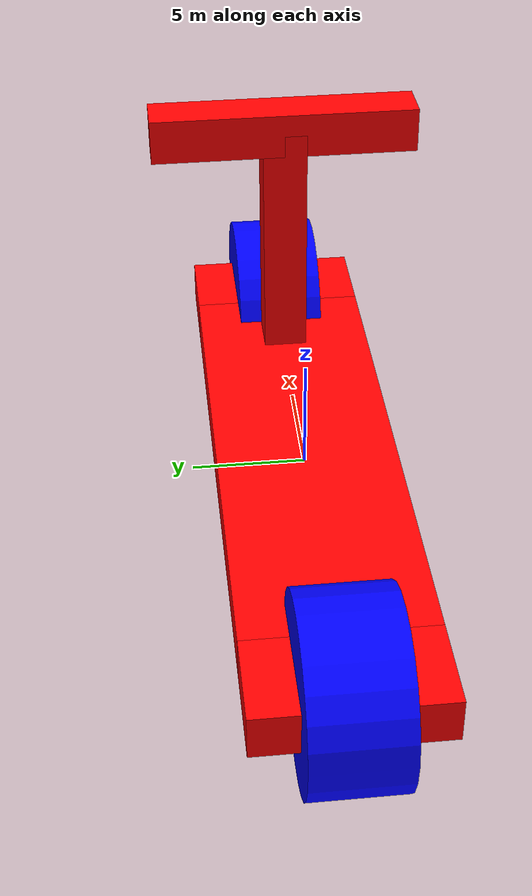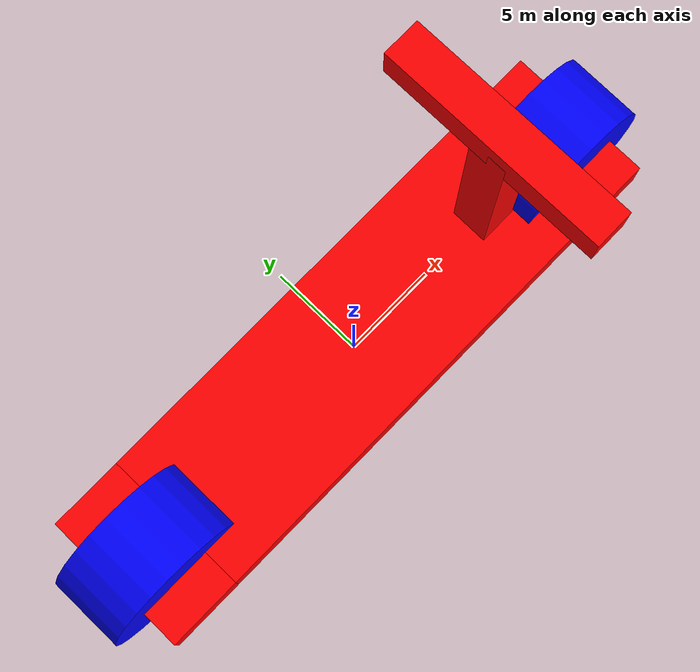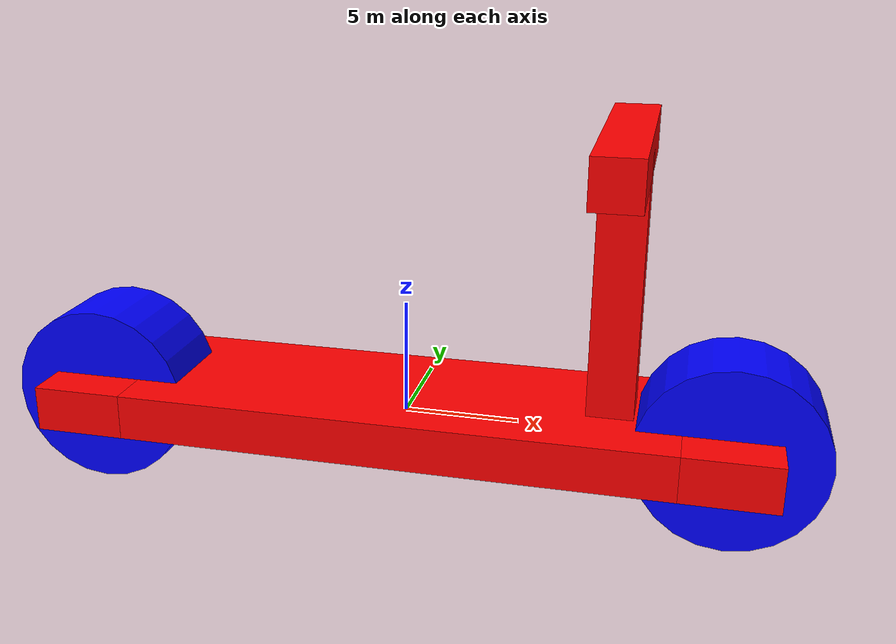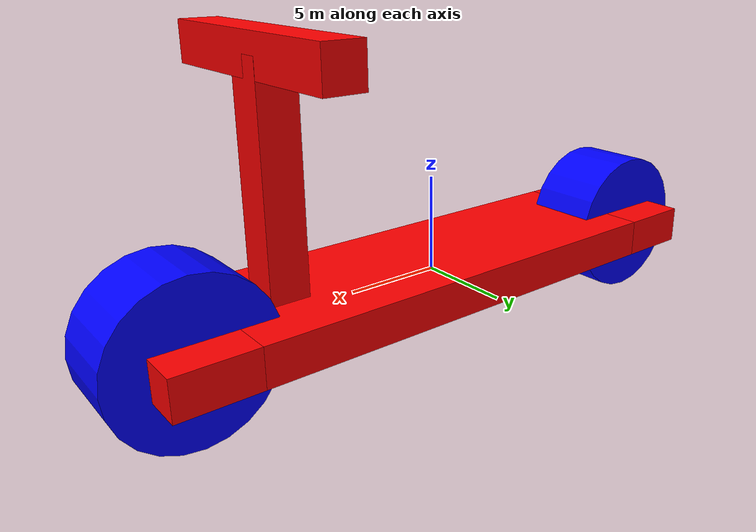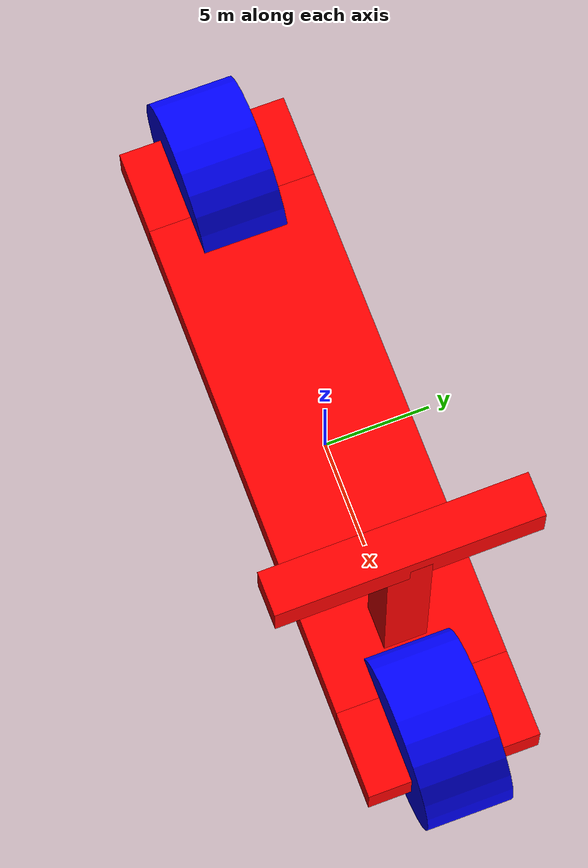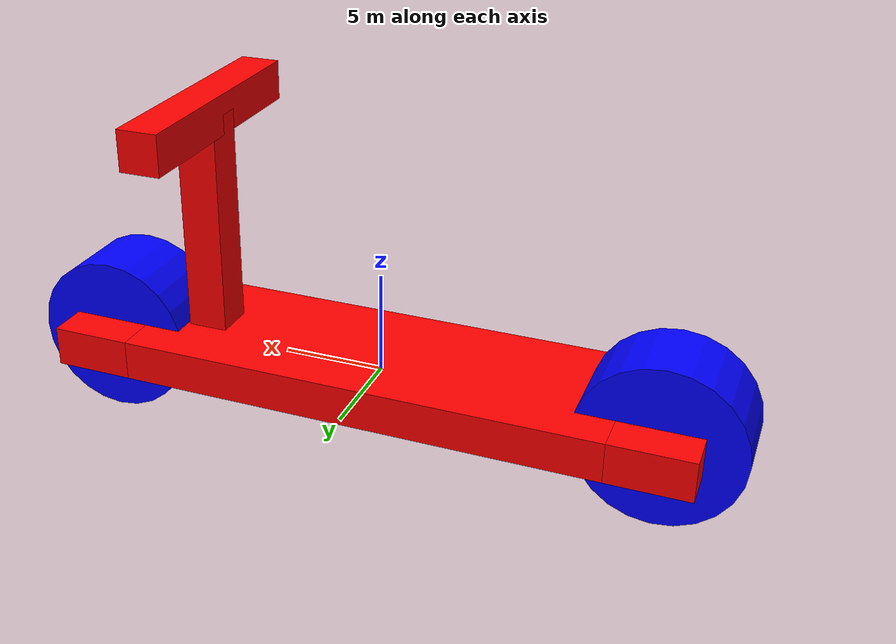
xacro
<?xml version="1.0"?>
<robot xmlns:xacro="http://www.ros.org/wiki/xacro" name="NAME_UNIT" >
	<xacro:arg name="colors" default="false"/>
	<xacro:arg name="initial" default="false"/>
	<xacro:arg name="color_initial" default="false"/>
	<xacro:property name="rectangle_color">
		<color rgba = "1 0 0 1.0" />
	 </xacro:property>
	 <xacro:property name="cylinder_color">
		 <color rgba = "0 0 1 1.0" />
	 </xacro:property>
	<xacro:property name="k" value="1"/>
	<xacro:if value="$(arg colors)">
		<xacro:property name="rectangle_color">
			<color rgba = "1 1 0 1.0" />
		</xacro:property>
		<xacro:property name="cylinder_color">
			<color rgba = "0 1 1 1.0" />
		</xacro:property>
	</xacro:if>
	<xacro:if value="$(arg color_initial)">
		<xacro:property name="rectangle_color">
			<color rgba = "0.3 0.2 0.5 1.0" />
		</xacro:property>
		<xacro:property name="cylinder_color">
			<color rgba = "0.5 0.1 0.9 1.0" />
		</xacro:property>
		<xacro:property name="k" value="2" />
	</xacro:if>
	<xacro:if value="$(arg initial)">
		<xacro:property name="k" value="3" />
	</xacro:if>
	<xacro:include filename="robot.xacro"/>
</robot>

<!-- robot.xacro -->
<robot xmlns:xacro="http://www.ros.org/wiki/xacro" name="NAME_UNIT" >
	<xacro:property name="l" value="24" />
	<xacro:property name="w" value="8" />
	<xacro:property name="h" value="2" />
	<xacro:property name="m" value="10"/>

	<xacro:include filename= "rectangle.xacro"/>
	<xacro:include filename="cylinder.xacro"/>
	<xacro:include filename="joints.xacro"/>

	<link name="root"/>

	<xacro:rectangle link_name="main_block" l="${l}" w="${w}" h="${h}" m="${m}" />

	<xacro:rectangle link_name="small_block1" l="${l/6}" w="${w/4}" h="${h}" m="${m/10}" />
	<xacro:rectangle link_name="small_block2" l="${l/6}" w="${w/4}" h="${h}" m="${m/10}" />
	<xacro:rectangle link_name="small_block3" l="${l/6}" w="${w/4}" h="${h}" m="${m/10}" />
	<xacro:rectangle link_name="small_block4" l="${l/6}" w="${w/4}" h="${h}" m="${m/10}" />

	<xacro:rectangle link_name="vertical_axis" l="${l/12}" w="${w/4}" h="${h*6}" m="${m/3}" />
	<xacro:rectangle link_name="horizontal_axis" l="${l/2}" w="${w/4}" h="${h}" m="${m/6}"/>

	<xacro:cylinder link_name="cylinder1" r="${h*2/k}" l="${w/2}" m="${m/8}"/>
	<xacro:cylinder link_name="cylinder2" r="${h*2/k}" l="${w/2}" m="${m/8}"/>

	<xacro:rec2rec_joint parent_name="root" child_name="main_block" type="fixed" rotation="0 0 0 " angle="0 0 0"  translateX="0" translateY="0" translateZ="0" dirX="0" dirY="0" dirZ="0" n="0"/>
	<xacro:rec2rec_joint parent_name="main_block" child_name="small_block1" type="fixed" rotation="0 0 0" angle="0 0 0" translateX="${l/2+l/12}" translateY="${3*w/8}" translateZ="0" dirX="1" dirY="1" dirZ="0" n="1"/>
	<xacro:rec2rec_joint parent_name="main_block" child_name="small_block2" type="fixed" rotation="0 0 0" angle="0 0 0"  translateX="${l/2+l/12}" translateY="${3*w/8}" translateZ="0" dirX="1" dirY="-1" dirZ="0" n="2"/>
	<xacro:rec2rec_joint parent_name="main_block" child_name="small_block3" type="fixed" rotation="0 0 0" angle="0 0 0" translateX="${l/2+l/12}" translateY="${3*w/8}" translateZ="0" dirX="-1" dirY="1" dirZ="0" n="3"/>
	<xacro:rec2rec_joint parent_name="main_block" child_name="small_block4" type="fixed" rotation="0 0 0" angle="0 0 0" translateX="${l/2+l/12}" translateY="${3*w/8}" translateZ="0" dirX="-1" dirY="-1" dirZ="0" n="4"/>
	<xacro:rec2rec_joint parent_name="main_block" child_name="vertical_axis" type="fixed" rotation="0 0 0" angle="0 0 0" translateX="${3*l/8}" translateY="0" translateZ="${h*3}" dirX="1" dirY="0" dirZ="1" n="5"/>
	<xacro:rec2rec_joint parent_name="vertical_axis" child_name="horizontal_axis" type="continuous" rotation="0 0 1" angle="0 0 1.578" translateX="0" translateY="0" translateZ="${h*3}" dirX="0" dirY="0" dirZ="1" n="6"/>

	<xacro:cyl2rec_joint parent_name="small_block1" child_name="cylinder1"  translateX="0" translateY="${w/8+w/4}" translateZ="0" dirX="0" dirY="-1" dirZ="0" n="1"/>
	<xacro:cyl2rec_joint parent_name="small_block4" child_name="cylinder2"  translateX="0" translateY="${w/8+w/4}" translateZ="0" dirX="0" dirY="1" dirZ="0" n="2"/>
</robot>

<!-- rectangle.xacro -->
<robot xmlns:xacro="http://www.ros.org/wiki/xacro" name="NAME_UNIT" >
	<xacro:macro name="rectangle" params="link_name l w h m">
		<link name="${link_name}">
			<visual>
				<origin xyz="0 0 0" rpy="0 0 0"/>
				 <geometry>
					<box size="${l} ${w} ${h}"/>
				</geometry>
				<material name="color">
					<xacro:insert_block name="rectangle_color"/>
				</material>
			</visual>
			<inertial>
				<origin xyz="0 0 0" rpy="0 0 0"/>
				<mass value="${m}" />
				<inertia ixx = "${m*(h**2+l**2)/12}" iyy = "${m*(h**2+w**2)/12}" izz = "${m*(w**2+l**2)/12}" ixy = "0" ixz = "0" iyz = "0" />
			</inertial>
		</link>
	</xacro:macro>
</robot>

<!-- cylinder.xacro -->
<robot xmlns:xacro="http://www.ros.org/wiki/xacro" name="NAME_UNIT" >
        <xacro:macro name="cylinder" params="link_name r l m">
                <link name="${link_name}">
                        <visual>
                                <origin xyz="0 0 0" rpy="0 0 0"/>
                                 <geometry>
                                        <cylinder radius="${r}" length="${l}"/>
                                </geometry>
                                <material name="color_cyl">
                                        <xacro:insert_block name="cylinder_color"/>
                                </material>
                        </visual>
                        <inertial>
                                <origin xyz="0 0 0" rpy="0 0 0"/>
                                <mass value="${m}" />
                                <inertia ixx = "${m*(3*r**2+l**2)/12}" iyy = "${m*(3*r**2+l**2)/12}" izz = "${m*r**2/12}" ixy = "0" ixz = "0" iyz = "0" />
                        </inertial>
		</link>
	</xacro:macro>
</robot>

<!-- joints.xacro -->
<robot xmlns:xacro="http://www.ros.org/wiki/xacro" name="NAME_UNIT" >
	<xacro:macro name="rec2rec_joint" params="parent_name child_name type rotation angle translateX translateY translateZ dirX dirY dirZ n">
		<joint name="rec2rec_joint${n}" type="${type}">
			<parent link="${parent_name}"/>
			<child link="${child_name}"/>
			<origin xyz="${translateX * dirX} ${translateY * dirY} ${translateZ * dirZ}" rpy="${angle}"/>
			<axis xyz="${rotation}"/>
			<limit lower="-6.3" upper="6.3" effort="100" velocity="5"/>
		</joint>
	</xacro:macro>
	<xacro:macro name="cyl2rec_joint" params="parent_name child_name translateX translateY translateZ dirX dirY dirZ n">
		<joint name="cyl2rec_joint${n}" type="continuous">
			<parent link="${parent_name}"/>
			<child link="${child_name}"/>
			<origin xyz="${translateX * dirX} ${translateY * dirY} ${translateZ*dirZ}" rpy=" 1.5708 0 0"/>
			<axis xyz="0 0 1" />
			<limit lower="-6.3" upper="6.3" effort="100" velocity="5"/>
		</joint>
	</xacro:macro>

</robot>
